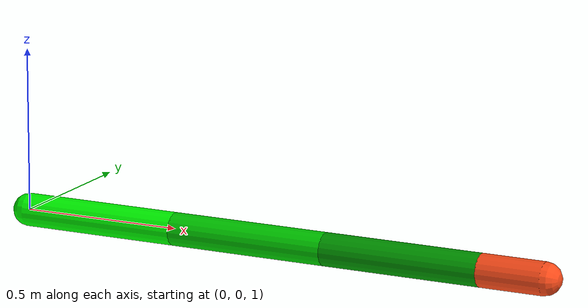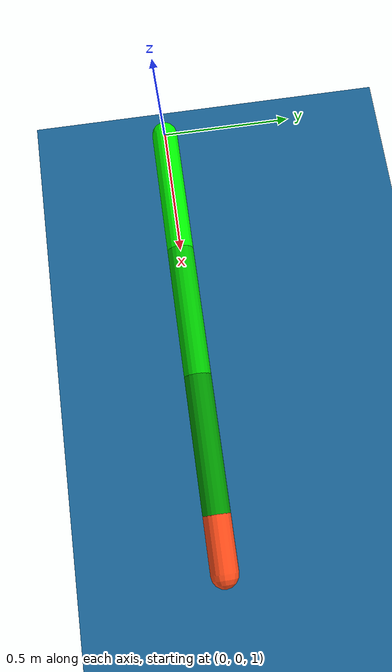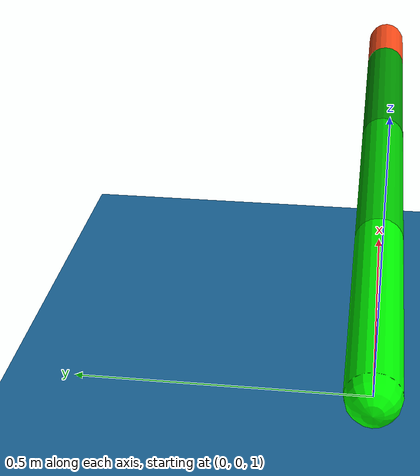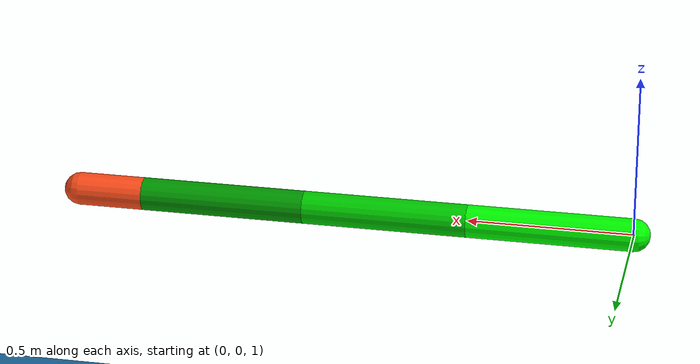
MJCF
<mujoco model="worm_swimmer">
    <option gravity="0 0 -9.81"
            timestep="0.01"
            integrator="implicitfast">
        <flag energy="enable"/>
    </option>

    <asset>
        <texture name="grid" type="2d" builtin="checker" width="512" height="512"
                 rgb1=".1 .2 .3" rgb2=".2 .3 .4"/>
        <material name="grid" texture="grid" texrepeat="1 1"
                  texuniform="true" reflectance=".2"/>
    </asset>

    <default>
        <joint damping="0.5"/>
        <geom friction="0.1 0.1 0.1"/>
    </default>

    <worldbody>
        <light name="sun" pos="0 0 10" dir="0.2 -0.2 -1"
               diffuse="0.8 0.8 0.8" specular="0.3 0.3 0.3"
               castshadow="true"/>
        <light name="fill" pos="0 0 -5" dir="0 0 1"
               diffuse="0.3 0.3 0.4" specular="0.1 0.1 0.1"/>
        <light name="ambient" pos="0 0 0"
               diffuse="0.12 0.12 0.2" specular="0 0 0"/>

        <geom name="floor" type="plane" size="0 0 .05"
              material="grid" condim="3" rgba="0.1 0.4 0.6 1"/>

        <!-- Visual water surface only -->
        <geom name="water_surface"
              type="plane"
              size="10 10 0.01"
              pos="0 0 10.0"
              rgba="0 0.5 1 0.3"
              contype="0"
              conaffinity="0"/>

        <camera name="main_camera"
                pos="-3 -3 10"
                xyaxes="1 0 0 0 0 1"/>

        <camera name="top_follow"
                pos="0 0 10"
                xyaxes="1 0 0 0 0 1"
                mode="trackcom"/>

        <body name="segment1" pos="0 0 1">
            <freejoint name="root"/>
            <geom type="capsule"
                  size="0.05"
                  fromto="0 0 0 0.5 0 0"
                  rgba="0 1 0 1"
                  contype="0"
                  conaffinity="0"/>

            <body name="segment2" pos="0.5 0 0">
                <joint name="joint1" type="hinge" axis="0 1 0" pos="0 0 0" limited="true" range="-60 60"/>
                <geom type="capsule"
                      size="0.05"
                      fromto="0 0 0 0.5 0 0"
                      rgba="0 0.8 0 1"
                      contype="0"
                      conaffinity="0"/>

                <body name="segment3" pos="0.5 0 0">
                    <joint name="joint2" type="hinge" axis="0 1 0" pos="0 0 0" limited="true" range="-60 60"/>
                    <geom type="capsule"
                          size="0.05"
                          fromto="0 0 0 0.5 0 0"
                          rgba="0 0.6 0 1"
                          contype="0"
                          conaffinity="0"/>

                    <body name="head" pos="0.5 0 0">
                        <joint name="joint3" type="hinge" axis="0 1 0" pos="0 0 0" limited="true" range="-30 30"/>
                        <geom type="capsule"
                            size="0.05"
                            fromto="0 0 0 0.2 0 0"
                            rgba="1 0.3 0.1 1"
                            contype="0"
                            conaffinity="0"/>
                    </body>
                </body>
            </body>
        </body>
    </worldbody>

    <actuator>
        <motor name="muscle1" joint="joint1" gear="0.1"/>
        <motor name="muscle2" joint="joint2" gear="0.1"/>
        <motor name="muscle3" joint="joint3" gear="0.1"/>
    </actuator>
</mujoco>
